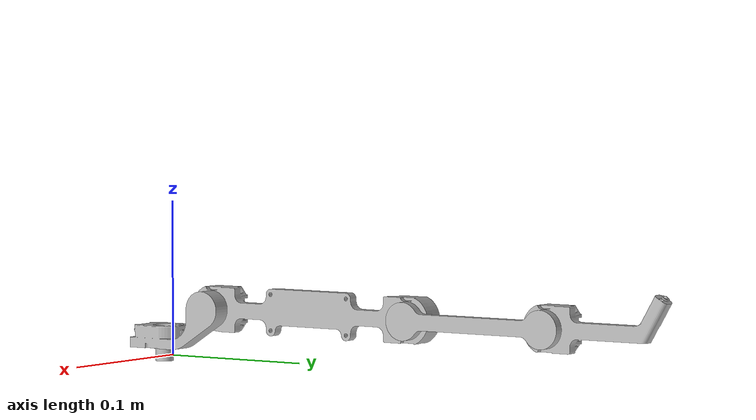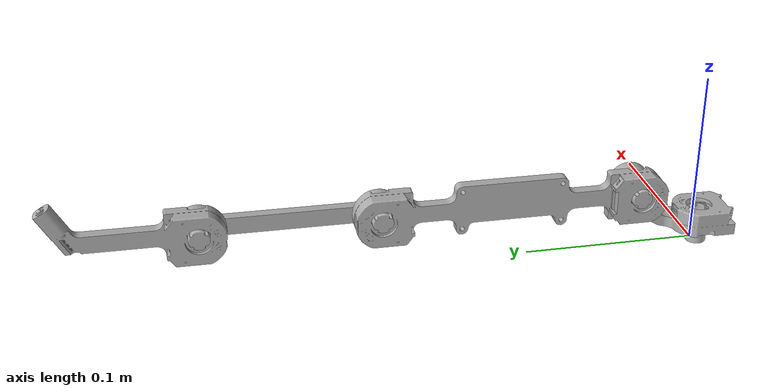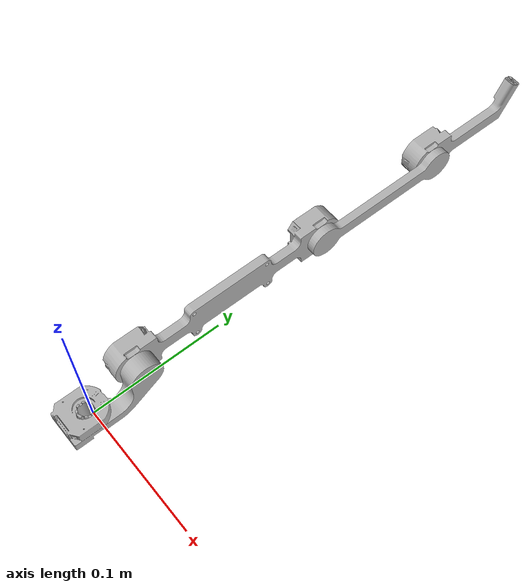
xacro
<?xml version="1.0" ?>
<robot name="V5" xmlns:xacro="http://www.ros.org/wiki/xacro">

<xacro:include filename="../urdf/materials.xacro" />
<xacro:include filename="../urdf/V5.trans" />
<xacro:include filename="../urdf/V5.gazebo" />
<link name="base_link">
  <inertial>
    <origin xyz="0.0030690000529868112 -0.004930753908953767 0.0060954147991827655" rpy="0 0 0"/>
    <mass value="0.001017166589049506"/>
    <inertia ixx="0.0" iyy="0.0" izz="0.0" ixy="0.0" iyz="0.0" ixz="0.0"/>
  </inertial>
  <visual>
    <origin xyz="0 0 0" rpy="0 0 0"/>
    <geometry>
      <mesh filename="package://V5_description/meshes/base_link.stl" scale="0.001 0.001 0.001"/>
    </geometry>
    <material name="silver"/>
  </visual>
  <collision>
    <origin xyz="0 0 0" rpy="0 0 0"/>
    <geometry>
      <mesh filename="package://V5_description/meshes/base_link.stl" scale="0.001 0.001 0.001"/>
    </geometry>
  </collision>
</link>

<link name="link_3_1">
  <inertial>
    <origin xyz="-0.005152868471693287 0.02481010722854876 0.0018574172697317093" rpy="0 0 0"/>
    <mass value="0.011902447961491562"/>
    <inertia ixx="1.1e-05" iyy="1e-06" izz="1e-05" ixy="-0.0" iyz="-1e-06" ixz="0.0"/>
  </inertial>
  <visual>
    <origin xyz="-0.005069 -0.285069 -0.031743" rpy="0 0 0"/>
    <geometry>
      <mesh filename="package://V5_description/meshes/link_3_1.stl" scale="0.001 0.001 0.001"/>
    </geometry>
    <material name="silver"/>
  </visual>
  <collision>
    <origin xyz="-0.005069 -0.285069 -0.031743" rpy="0 0 0"/>
    <geometry>
      <mesh filename="package://V5_description/meshes/link_3_1.stl" scale="0.001 0.001 0.001"/>
    </geometry>
  </collision>
</link>

<link name="link_2_1">
  <inertial>
    <origin xyz="0.0009055416474958236 0.049999413752218724 2.1327025657297272e-07" rpy="0 0 0"/>
    <mass value="0.10132228949775199"/>
    <inertia ixx="0.000184" iyy="4e-06" izz="0.000184" ixy="-0.0" iyz="0.0" ixz="-0.0"/>
  </inertial>
  <visual>
    <origin xyz="-0.005069 -0.185069 -0.031743" rpy="0 0 0"/>
    <geometry>
      <mesh filename="package://V5_description/meshes/link_2_1.stl" scale="0.001 0.001 0.001"/>
    </geometry>
    <material name="silver"/>
  </visual>
  <collision>
    <origin xyz="-0.005069 -0.185069 -0.031743" rpy="0 0 0"/>
    <geometry>
      <mesh filename="package://V5_description/meshes/link_2_1.stl" scale="0.001 0.001 0.001"/>
    </geometry>
  </collision>
</link>

<link name="link_1_1">
  <inertial>
    <origin xyz="-0.004689560010774196 0.07499986334155206 0.0010242857380551376" rpy="0 0 0"/>
    <mass value="0.026203534667712382"/>
    <inertia ixx="7.9e-05" iyy="2e-06" izz="7.8e-05" ixy="0.0" iyz="0.0" ixz="-0.0"/>
  </inertial>
  <visual>
    <origin xyz="-0.005069 -0.035069 -0.031743" rpy="0 0 0"/>
    <geometry>
      <mesh filename="package://V5_description/meshes/link_1_1.stl" scale="0.001 0.001 0.001"/>
    </geometry>
    <material name="silver"/>
  </visual>
  <collision>
    <origin xyz="-0.005069 -0.035069 -0.031743" rpy="0 0 0"/>
    <geometry>
      <mesh filename="package://V5_description/meshes/link_1_1.stl" scale="0.001 0.001 0.001"/>
    </geometry>
  </collision>
</link>

<link name="link_0_1">
  <inertial>
    <origin xyz="0.0038425748097726006 0.020806219418995853 0.015441576217583838" rpy="0 0 0"/>
    <mass value="0.016056852755794385"/>
    <inertia ixx="9e-06" iyy="3e-06" izz="8e-06" ixy="-1e-06" iyz="-3e-06" ixz="-0.0"/>
  </inertial>
  <visual>
    <origin xyz="-0.003069 0.004931 -0.005243" rpy="0 0 0"/>
    <geometry>
      <mesh filename="package://V5_description/meshes/link_0_1.stl" scale="0.001 0.001 0.001"/>
    </geometry>
    <material name="silver"/>
  </visual>
  <collision>
    <origin xyz="-0.003069 0.004931 -0.005243" rpy="0 0 0"/>
    <geometry>
      <mesh filename="package://V5_description/meshes/link_0_1.stl" scale="0.001 0.001 0.001"/>
    </geometry>
  </collision>
</link>

<joint name="Rev5" type="continuous">
  <origin xyz="0.0 0.1 0.0" rpy="0 0 0"/>
  <parent link="link_2_1"/>
  <child link="link_3_1"/>
  <axis xyz="-1.0 0.0 -0.0"/>
</joint>

<joint name="Rev6" type="continuous">
  <origin xyz="0.0 0.15 0.0" rpy="0 0 0"/>
  <parent link="link_1_1"/>
  <child link="link_2_1"/>
  <axis xyz="-1.0 0.0 -0.0"/>
</joint>

<joint name="Rev7" type="continuous">
  <origin xyz="0.002 0.04 0.0265" rpy="0 0 0"/>
  <parent link="link_0_1"/>
  <child link="link_1_1"/>
  <axis xyz="-1.0 0.0 -0.0"/>
</joint>

<joint name="Rev8" type="continuous">
  <origin xyz="0.003069 -0.004931 0.005243" rpy="0 0 0"/>
  <parent link="base_link"/>
  <child link="link_0_1"/>
  <axis xyz="-0.0 0.0 1.0"/>
</joint>

</robot>

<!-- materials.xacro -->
<robot name="V5" xmlns:xacro="http://www.ros.org/wiki/xacro" >

<material name="silver">
  <color rgba="0.700 0.700 0.700 1.000"/>
</material>

</robot>

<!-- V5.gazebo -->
<robot name="V5" xmlns:xacro="http://www.ros.org/wiki/xacro" >

<xacro:property name="body_color" value="Gazebo/Silver" />

<gazebo>
  <plugin name="control" filename="libgazebo_ros_control.so"/>
</gazebo>
<gazebo reference="base_link">
  <material>${body_color}</material>
  <mu1>0.2</mu1>
  <mu2>0.2</mu2>
  <selfCollide>true</selfCollide>
  <gravity>true</gravity>
</gazebo>

<gazebo reference="link_3_1">
  <material>${body_color}</material>
  <mu1>0.2</mu1>
  <mu2>0.2</mu2>
  <selfCollide>true</selfCollide>
</gazebo>

<gazebo reference="link_2_1">
  <material>${body_color}</material>
  <mu1>0.2</mu1>
  <mu2>0.2</mu2>
  <selfCollide>true</selfCollide>
</gazebo>

<gazebo reference="link_1_1">
  <material>${body_color}</material>
  <mu1>0.2</mu1>
  <mu2>0.2</mu2>
  <selfCollide>true</selfCollide>
</gazebo>

<gazebo reference="link_0_1">
  <material>${body_color}</material>
  <mu1>0.2</mu1>
  <mu2>0.2</mu2>
  <selfCollide>true</selfCollide>
</gazebo>

</robot>
